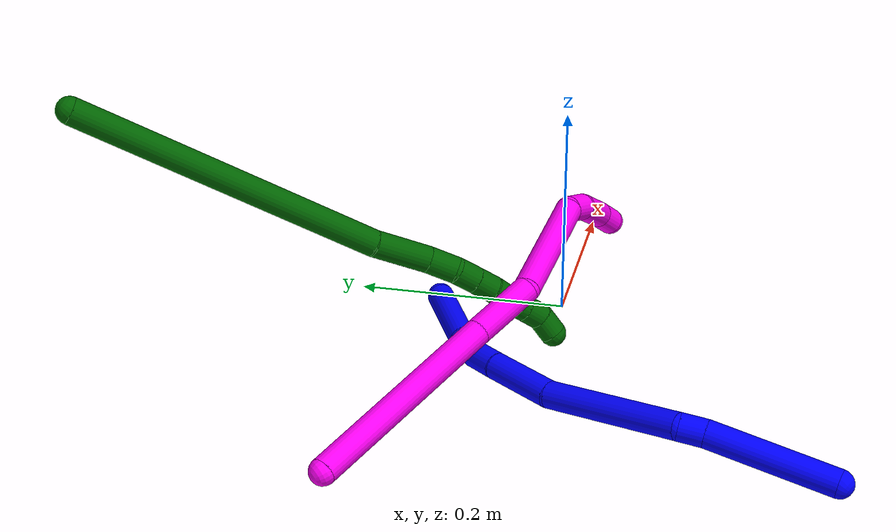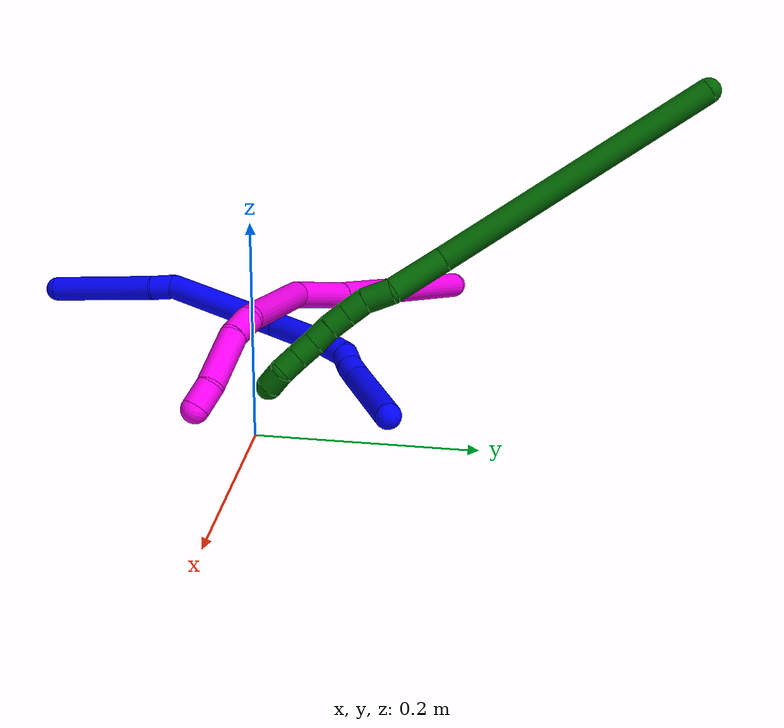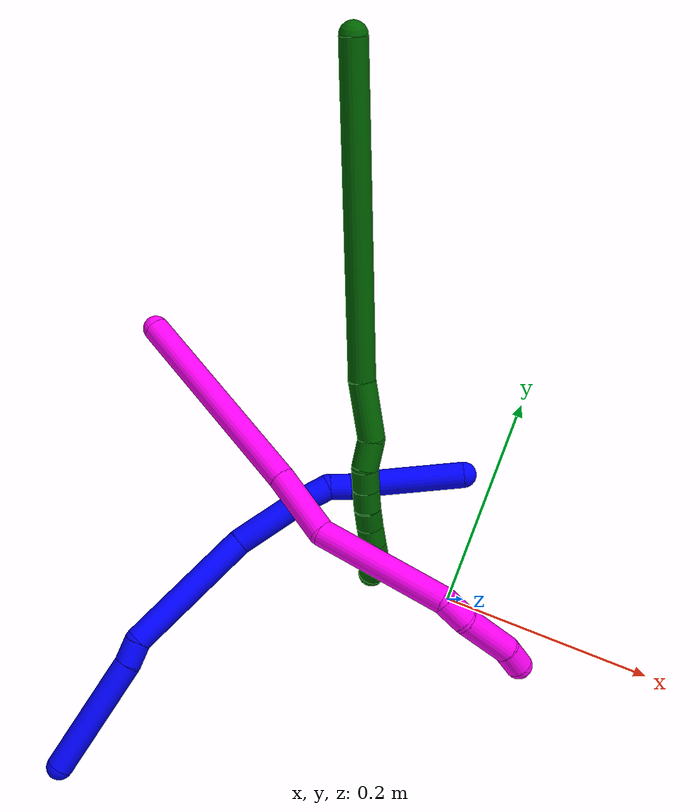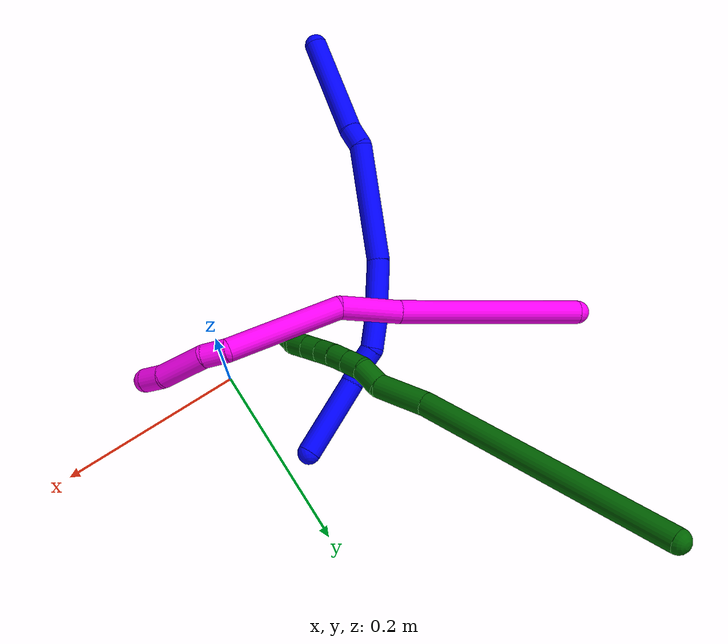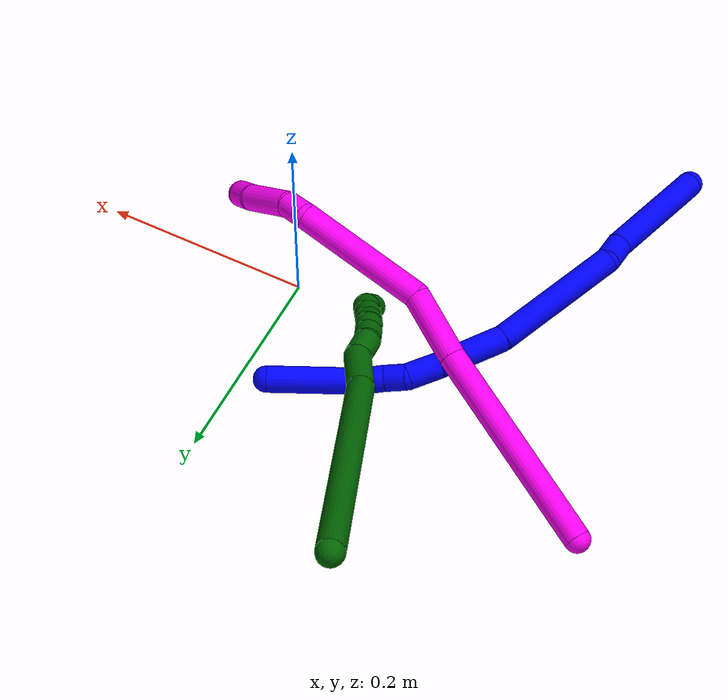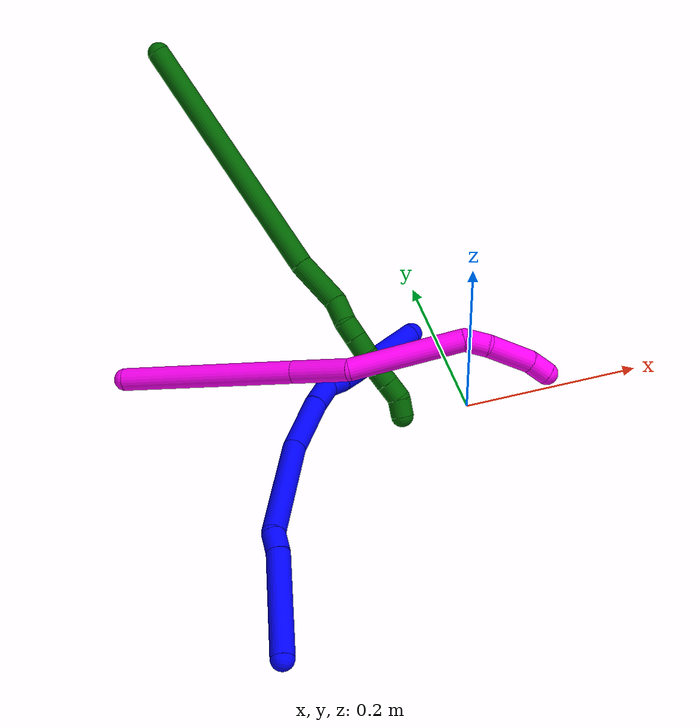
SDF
<sdf version="1.7">
 <world name="default">
  <model name="1">
   <static>0</static>
   <link name="1">
    <collision name="collision-cylinder-e_1_1_4">
     <pose>0.012238 -0.013355 -0.055549 2.90565 0.211017 1.45844</pose>
     <geometry><cylinder><radius>0.0125</radius><length>0.116855</length></cylinder></geometry>
     <surface>
      <friction><ode><mu>1.16</mu><mu2>1.16</mu2><slip1>0</slip1><slip2>0</slip2></ode></friction>
      <contact><ode><kp>1e+06</kp><kd>1</kd><max_vel>0</max_vel><min_depth>0.001</min_depth></ode></contact>
     </surface>
    </collision>
    <visual name="visual-cylinder-e_1_1_4">
     <pose>0.012238 -0.013355 -0.055549 2.90565 0.211017 1.45844</pose>
     <geometry><cylinder><radius>0.0125</radius><length>0.116855</length></cylinder></geometry>
     <material><ambient>0 0 1 1</ambient></material>
    </visual>
    <collision name="collision-cylinder-e_2_4_5">
     <pose>0.026934 -0.031324 -0.121598 2.72765 0.211114 0.934603</pose>
     <geometry><cylinder><radius>0.0125</radius><length>0.02346</length></cylinder></geometry>
     <surface>
      <friction><ode><mu>1.16</mu><mu2>1.16</mu2><slip1>0</slip1><slip2>0</slip2></ode></friction>
      <contact><ode><kp>1e+06</kp><kd>1</kd><max_vel>0</max_vel><min_depth>0.001</min_depth></ode></contact>
     </surface>
    </collision>
    <visual name="visual-cylinder-e_2_4_5">
     <pose>0.026934 -0.031324 -0.121598 2.72765 0.211114 0.934603</pose>
     <geometry><cylinder><radius>0.0125</radius><length>0.02346</length></cylinder></geometry>
     <material><ambient>0 0 1 1</ambient></material>
    </visual>
    <collision name="collision-cylinder-e_3_5_6">
     <pose>0.059278 -0.038342 -0.189851 3.09998 0.47719 2.97088</pose>
     <geometry><cylinder><radius>0.0125</radius><length>0.130142</length></cylinder></geometry>
     <surface>
      <friction><ode><mu>1.16</mu><mu2>1.16</mu2><slip1>0</slip1><slip2>0</slip2></ode></friction>
      <contact><ode><kp>1e+06</kp><kd>1</kd><max_vel>0</max_vel><min_depth>0.001</min_depth></ode></contact>
     </surface>
    </collision>
    <visual name="visual-cylinder-e_3_5_6">
     <pose>0.059278 -0.038342 -0.189851 3.09998 0.47719 2.97088</pose>
     <geometry><cylinder><radius>0.0125</radius><length>0.130142</length></cylinder></geometry>
     <material><ambient>0 0 1 1</ambient></material>
    </visual>
    <collision name="collision-cylinder-e_4_6_7">
     <pose>0.100899 -0.035458 -0.278739 -2.97333 0.355753 -2.26439</pose>
     <geometry><cylinder><radius>0.0125</radius><length>0.067384</length></cylinder></geometry>
     <surface>
      <friction><ode><mu>1.16</mu><mu2>1.16</mu2><slip1>0</slip1><slip2>0</slip2></ode></friction>
      <contact><ode><kp>1e+06</kp><kd>1</kd><max_vel>0</max_vel><min_depth>0.001</min_depth></ode></contact>
     </surface>
    </collision>
    <visual name="visual-cylinder-e_4_6_7">
     <pose>0.100899 -0.035458 -0.278739 -2.97333 0.355753 -2.26439</pose>
     <geometry><cylinder><radius>0.0125</radius><length>0.067384</length></cylinder></geometry>
     <material><ambient>0 0 1 1</ambient></material>
    </visual>
    <collision name="collision-cylinder-e_5_7_8">
     <pose>0.118834 -0.026183 -0.323952 -2.86568 0.400862 -1.9426</pose>
     <geometry><cylinder><radius>0.0125</radius><length>0.031781</length></cylinder></geometry>
     <surface>
      <friction><ode><mu>1.16</mu><mu2>1.16</mu2><slip1>0</slip1><slip2>0</slip2></ode></friction>
      <contact><ode><kp>1e+06</kp><kd>1</kd><max_vel>0</max_vel><min_depth>0.001</min_depth></ode></contact>
     </surface>
    </collision>
    <visual name="visual-cylinder-e_5_7_8">
     <pose>0.118834 -0.026183 -0.323952 -2.86568 0.400862 -1.9426</pose>
     <geometry><cylinder><radius>0.0125</radius><length>0.031781</length></cylinder></geometry>
     <material><ambient>0 0 1 1</ambient></material>
    </visual>
    <collision name="collision-cylinder-e_6_8_9">
     <pose>0.129754 -0.015557 -0.344317 -2.32888 0.476451 -1.02757</pose>
     <geometry><cylinder><radius>0.0125</radius><length>0.020582</length></cylinder></geometry>
     <surface>
      <friction><ode><mu>1.16</mu><mu2>1.16</mu2><slip1>0</slip1><slip2>0</slip2></ode></friction>
      <contact><ode><kp>1e+06</kp><kd>1</kd><max_vel>0</max_vel><min_depth>0.001</min_depth></ode></contact>
     </surface>
    </collision>
    <visual name="visual-cylinder-e_6_8_9">
     <pose>0.129754 -0.015557 -0.344317 -2.32888 0.476451 -1.02757</pose>
     <geometry><cylinder><radius>0.0125</radius><length>0.020582</length></cylinder></geometry>
     <material><ambient>0 0 1 1</ambient></material>
    </visual>
    <collision name="collision-cylinder-e_7_9_10">
     <pose>0.139019 -0.002932 -0.358589 -2.49847 0.427456 -1.15492</pose>
     <geometry><cylinder><radius>0.0125</radius><length>0.021929</length></cylinder></geometry>
     <surface>
      <friction><ode><mu>1.16</mu><mu2>1.16</mu2><slip1>0</slip1><slip2>0</slip2></ode></friction>
      <contact><ode><kp>1e+06</kp><kd>1</kd><max_vel>0</max_vel><min_depth>0.001</min_depth></ode></contact>
     </surface>
    </collision>
    <visual name="visual-cylinder-e_7_9_10">
     <pose>0.139019 -0.002932 -0.358589 -2.49847 0.427456 -1.15492</pose>
     <geometry><cylinder><radius>0.0125</radius><length>0.021929</length></cylinder></geometry>
     <material><ambient>0 0 1 1</ambient></material>
    </visual>
    <collision name="collision-cylinder-e_8_10_2">
     <pose>0.155215 0.02981 -0.399413 -2.45787 0.268383 -0.725247</pose>
     <geometry><cylinder><radius>0.0125</radius><length>0.087868</length></cylinder></geometry>
     <surface>
      <friction><ode><mu>1.16</mu><mu2>1.16</mu2><slip1>0</slip1><slip2>0</slip2></ode></friction>
      <contact><ode><kp>1e+06</kp><kd>1</kd><max_vel>0</max_vel><min_depth>0.001</min_depth></ode></contact>
     </surface>
    </collision>
    <visual name="visual-cylinder-e_8_10_2">
     <pose>0.155215 0.02981 -0.399413 -2.45787 0.268383 -0.725247</pose>
     <geometry><cylinder><radius>0.0125</radius><length>0.087868</length></cylinder></geometry>
     <material><ambient>0 0 1 1</ambient></material>
    </visual>
    <collision name="collision-sphere-2">
     <pose>0.166865 0.056569 -0.432252 0 -0 0</pose>
     <geometry><sphere><radius>0.0125</radius></sphere></geometry>
     <surface>
      <friction><ode><mu>1.16</mu><mu2>1.16</mu2><slip1>0</slip1><slip2>0</slip2></ode></friction>
      <contact><ode><kp>1e+06</kp><kd>1</kd><max_vel>0</max_vel><min_depth>0.001</min_depth></ode></contact>
     </surface>
    </collision>
    <visual name="visual-sphere-2">
     <pose>0.166865 0.056569 -0.432252 0 -0 0</pose>
     <geometry><sphere><radius>0.0125</radius></sphere></geometry>
     <material><ambient>0 0 1 1</ambient></material>
    </visual>
    <collision name="collision-sphere-10">
     <pose>0.143565 0.003051 -0.366573 0 -0 0</pose>
     <geometry><sphere><radius>0.0125</radius></sphere></geometry>
     <surface>
      <friction><ode><mu>1.16</mu><mu2>1.16</mu2><slip1>0</slip1><slip2>0</slip2></ode></friction>
      <contact><ode><kp>1e+06</kp><kd>1</kd><max_vel>0</max_vel><min_depth>0.001</min_depth></ode></contact>
     </surface>
    </collision>
    <visual name="visual-sphere-10">
     <pose>0.143565 0.003051 -0.366573 0 -0 0</pose>
     <geometry><sphere><radius>0.0125</radius></sphere></geometry>
     <material><ambient>0 0 1 1</ambient></material>
    </visual>
    <collision name="collision-sphere-9">
     <pose>0.134474 -0.008916 -0.350604 0 -0 0</pose>
     <geometry><sphere><radius>0.0125</radius></sphere></geometry>
     <surface>
      <friction><ode><mu>1.16</mu><mu2>1.16</mu2><slip1>0</slip1><slip2>0</slip2></ode></friction>
      <contact><ode><kp>1e+06</kp><kd>1</kd><max_vel>0</max_vel><min_depth>0.001</min_depth></ode></contact>
     </surface>
    </collision>
    <visual name="visual-sphere-9">
     <pose>0.134474 -0.008916 -0.350604 0 -0 0</pose>
     <geometry><sphere><radius>0.0125</radius></sphere></geometry>
     <material><ambient>0 0 1 1</ambient></material>
    </visual>
    <collision name="collision-sphere-4">
     <pose>0.024476 -0.02671 -0.111097 0 -0 0</pose>
     <geometry><sphere><radius>0.0125</radius></sphere></geometry>
     <surface>
      <friction><ode><mu>1.16</mu><mu2>1.16</mu2><slip1>0</slip1><slip2>0</slip2></ode></friction>
      <contact><ode><kp>1e+06</kp><kd>1</kd><max_vel>0</max_vel><min_depth>0.001</min_depth></ode></contact>
     </surface>
    </collision>
    <visual name="visual-sphere-4">
     <pose>0.024476 -0.02671 -0.111097 0 -0 0</pose>
     <geometry><sphere><radius>0.0125</radius></sphere></geometry>
     <material><ambient>0 0 1 1</ambient></material>
    </visual>
    <collision name="collision-sphere-1">
     <geometry><sphere><radius>0.0125</radius></sphere></geometry>
     <surface>
      <friction><ode><mu>1.16</mu><mu2>1.16</mu2><slip1>0</slip1><slip2>0</slip2></ode></friction>
      <contact><ode><kp>1e+06</kp><kd>1</kd><max_vel>0</max_vel><min_depth>0.001</min_depth></ode></contact>
     </surface>
    </collision>
    <visual name="visual-sphere-1">
     <geometry><sphere><radius>0.0125</radius></sphere></geometry>
     <material><ambient>0 0 1 1</ambient></material>
    </visual>
    <collision name="collision-sphere-8">
     <pose>0.125035 -0.022197 -0.338029 0 -0 0</pose>
     <geometry><sphere><radius>0.0125</radius></sphere></geometry>
     <surface>
      <friction><ode><mu>1.16</mu><mu2>1.16</mu2><slip1>0</slip1><slip2>0</slip2></ode></friction>
      <contact><ode><kp>1e+06</kp><kd>1</kd><max_vel>0</max_vel><min_depth>0.001</min_depth></ode></contact>
     </surface>
    </collision>
    <visual name="visual-sphere-8">
     <pose>0.125035 -0.022197 -0.338029 0 -0 0</pose>
     <geometry><sphere><radius>0.0125</radius></sphere></geometry>
     <material><ambient>0 0 1 1</ambient></material>
    </visual>
    <collision name="collision-sphere-5">
     <pose>0.029392 -0.035937 -0.132099 0 -0 0</pose>
     <geometry><sphere><radius>0.0125</radius></sphere></geometry>
     <surface>
      <friction><ode><mu>1.16</mu><mu2>1.16</mu2><slip1>0</slip1><slip2>0</slip2></ode></friction>
      <contact><ode><kp>1e+06</kp><kd>1</kd><max_vel>0</max_vel><min_depth>0.001</min_depth></ode></contact>
     </surface>
    </collision>
    <visual name="visual-sphere-5">
     <pose>0.029392 -0.035937 -0.132099 0 -0 0</pose>
     <geometry><sphere><radius>0.0125</radius></sphere></geometry>
     <material><ambient>0 0 1 1</ambient></material>
    </visual>
    <collision name="collision-sphere-6">
     <pose>0.089164 -0.040746 -0.247602 0 -0 0</pose>
     <geometry><sphere><radius>0.0125</radius></sphere></geometry>
     <surface>
      <friction><ode><mu>1.16</mu><mu2>1.16</mu2><slip1>0</slip1><slip2>0</slip2></ode></friction>
      <contact><ode><kp>1e+06</kp><kd>1</kd><max_vel>0</max_vel><min_depth>0.001</min_depth></ode></contact>
     </surface>
    </collision>
    <visual name="visual-sphere-6">
     <pose>0.089164 -0.040746 -0.247602 0 -0 0</pose>
     <geometry><sphere><radius>0.0125</radius></sphere></geometry>
     <material><ambient>0 0 1 1</ambient></material>
    </visual>
    <collision name="collision-sphere-7">
     <pose>0.112633 -0.030169 -0.309875 0 -0 0</pose>
     <geometry><sphere><radius>0.0125</radius></sphere></geometry>
     <surface>
      <friction><ode><mu>1.16</mu><mu2>1.16</mu2><slip1>0</slip1><slip2>0</slip2></ode></friction>
      <contact><ode><kp>1e+06</kp><kd>1</kd><max_vel>0</max_vel><min_depth>0.001</min_depth></ode></contact>
     </surface>
    </collision>
    <visual name="visual-sphere-7">
     <pose>0.112633 -0.030169 -0.309875 0 -0 0</pose>
     <geometry><sphere><radius>0.0125</radius></sphere></geometry>
     <material><ambient>0 0 1 1</ambient></material>
    </visual>
    <inertial>
     <pose>0.079419 -0.016544 -0.22635 0 -0 0</pose>
     <mass>0.5</mass>
     <inertia>
      <ixx>-1e-05</ixx>
      <ixy>0</ixy>
      <ixz>0</ixz>
      <iyy>0.000273</iyy>
      <iyz>0</iyz>
      <izz>-0.000183</izz>
     </inertia>
    </inertial>
   </link>
   <pose>-0.283018 -0.276353 0.011498 -3.11821 1.19737 1.13836</pose>
  </model>
  <model name="6">
   <static>0</static>
   <link name="6">
    <collision name="collision-cylinder-e_1_1_4">
     <pose>0.010562 -0.035921 -0.142376 2.89445 0.071806 0.563021</pose>
     <geometry><cylinder><radius>0.0125</radius><length>0.294434</length></cylinder></geometry>
     <surface>
      <friction><ode><mu>1.16</mu><mu2>1.16</mu2><slip1>0</slip1><slip2>0</slip2></ode></friction>
      <contact><ode><kp>1e+06</kp><kd>1</kd><max_vel>0</max_vel><min_depth>0.001</min_depth></ode></contact>
     </surface>
    </collision>
    <visual name="visual-cylinder-e_1_1_4">
     <pose>0.010562 -0.035921 -0.142376 2.89445 0.071806 0.563021</pose>
     <geometry><cylinder><radius>0.0125</radius><length>0.294434</length></cylinder></geometry>
     <material><ambient>0 0.392157 0.003922 1</ambient></material>
    </visual>
    <collision name="collision-cylinder-e_2_4_5">
     <pose>0.027023 -0.079918 -0.311004 2.84315 0.211586 1.22993</pose>
     <geometry><cylinder><radius>0.0125</radius><length>0.056184</length></cylinder></geometry>
     <surface>
      <friction><ode><mu>1.16</mu><mu2>1.16</mu2><slip1>0</slip1><slip2>0</slip2></ode></friction>
      <contact><ode><kp>1e+06</kp><kd>1</kd><max_vel>0</max_vel><min_depth>0.001</min_depth></ode></contact>
     </surface>
    </collision>
    <visual name="visual-cylinder-e_2_4_5">
     <pose>0.027023 -0.079918 -0.311004 2.84315 0.211586 1.22993</pose>
     <geometry><cylinder><radius>0.0125</radius><length>0.056184</length></cylinder></geometry>
     <material><ambient>0 0.392157 0.003922 1</ambient></material>
    </visual>
    <collision name="collision-cylinder-e_3_5_6">
     <pose>0.030951 -0.093572 -0.349827 2.72401 -0.142391 -0.64936</pose>
     <geometry><cylinder><radius>0.0125</radius><length>0.027789</length></cylinder></geometry>
     <surface>
      <friction><ode><mu>1.16</mu><mu2>1.16</mu2><slip1>0</slip1><slip2>0</slip2></ode></friction>
      <contact><ode><kp>1e+06</kp><kd>1</kd><max_vel>0</max_vel><min_depth>0.001</min_depth></ode></contact>
     </surface>
    </collision>
    <visual name="visual-cylinder-e_3_5_6">
     <pose>0.030951 -0.093572 -0.349827 2.72401 -0.142391 -0.64936</pose>
     <geometry><cylinder><radius>0.0125</radius><length>0.027789</length></cylinder></geometry>
     <material><ambient>0 0.392157 0.003922 1</ambient></material>
    </visual>
    <collision name="collision-cylinder-e_4_6_7">
     <pose>0.029911 -0.101004 -0.372711 2.96363 0.088656 0.922795</pose>
     <geometry><cylinder><radius>0.0125</radius><length>0.021037</length></cylinder></geometry>
     <surface>
      <friction><ode><mu>1.16</mu><mu2>1.16</mu2><slip1>0</slip1><slip2>0</slip2></ode></friction>
      <contact><ode><kp>1e+06</kp><kd>1</kd><max_vel>0</max_vel><min_depth>0.001</min_depth></ode></contact>
     </surface>
    </collision>
    <visual name="visual-cylinder-e_4_6_7">
     <pose>0.029911 -0.101004 -0.372711 2.96363 0.088656 0.922795</pose>
     <geometry><cylinder><radius>0.0125</radius><length>0.021037</length></cylinder></geometry>
     <material><ambient>0 0.392157 0.003922 1</ambient></material>
    </visual>
    <collision name="collision-cylinder-e_5_7_8">
     <pose>0.031835 -0.104519 -0.393065 2.97778 0.097254 1.07027</pose>
     <geometry><cylinder><radius>0.0125</radius><length>0.020454</length></cylinder></geometry>
     <surface>
      <friction><ode><mu>1.16</mu><mu2>1.16</mu2><slip1>0</slip1><slip2>0</slip2></ode></friction>
      <contact><ode><kp>1e+06</kp><kd>1</kd><max_vel>0</max_vel><min_depth>0.001</min_depth></ode></contact>
     </surface>
    </collision>
    <visual name="visual-cylinder-e_5_7_8">
     <pose>0.031835 -0.104519 -0.393065 2.97778 0.097254 1.07027</pose>
     <geometry><cylinder><radius>0.0125</radius><length>0.020454</length></cylinder></geometry>
     <material><ambient>0 0.392157 0.003922 1</ambient></material>
    </visual>
    <collision name="collision-cylinder-e_6_8_9">
     <pose>0.034117 -0.1066 -0.413019 3.09912 0.129175 2.50696</pose>
     <geometry><cylinder><radius>0.0125</radius><length>0.020009</length></cylinder></geometry>
     <surface>
      <friction><ode><mu>1.16</mu><mu2>1.16</mu2><slip1>0</slip1><slip2>0</slip2></ode></friction>
      <contact><ode><kp>1e+06</kp><kd>1</kd><max_vel>0</max_vel><min_depth>0.001</min_depth></ode></contact>
     </surface>
    </collision>
    <visual name="visual-cylinder-e_6_8_9">
     <pose>0.034117 -0.1066 -0.413019 3.09912 0.129175 2.50696</pose>
     <geometry><cylinder><radius>0.0125</radius><length>0.020009</length></cylinder></geometry>
     <material><ambient>0 0.392157 0.003922 1</ambient></material>
    </visual>
    <collision name="collision-cylinder-e_7_9_10">
     <pose>0.037154 -0.108142 -0.432716 3.0275 0.175629 1.99073</pose>
     <geometry><cylinder><radius>0.0125</radius><length>0.020007</length></cylinder></geometry>
     <surface>
      <friction><ode><mu>1.16</mu><mu2>1.16</mu2><slip1>0</slip1><slip2>0</slip2></ode></friction>
      <contact><ode><kp>1e+06</kp><kd>1</kd><max_vel>0</max_vel><min_depth>0.001</min_depth></ode></contact>
     </surface>
    </collision>
    <visual name="visual-cylinder-e_7_9_10">
     <pose>0.037154 -0.108142 -0.432716 3.0275 0.175629 1.99073</pose>
     <geometry><cylinder><radius>0.0125</radius><length>0.020007</length></cylinder></geometry>
     <material><ambient>0 0.392157 0.003922 1</ambient></material>
    </visual>
    <collision name="collision-cylinder-e_8_10_11">
     <pose>0.040694 -0.110224 -0.452337 3.04429 0.179481 2.14966</pose>
     <geometry><cylinder><radius>0.0125</radius><length>0.020086</length></cylinder></geometry>
     <surface>
      <friction><ode><mu>1.16</mu><mu2>1.16</mu2><slip1>0</slip1><slip2>0</slip2></ode></friction>
      <contact><ode><kp>1e+06</kp><kd>1</kd><max_vel>0</max_vel><min_depth>0.001</min_depth></ode></contact>
     </surface>
    </collision>
    <visual name="visual-cylinder-e_8_10_11">
     <pose>0.040694 -0.110224 -0.452337 3.04429 0.179481 2.14966</pose>
     <geometry><cylinder><radius>0.0125</radius><length>0.020086</length></cylinder></geometry>
     <material><ambient>0 0.392157 0.003922 1</ambient></material>
    </visual>
    <collision name="collision-cylinder-e_9_11_2">
     <pose>0.04027 -0.109792 -0.471824 -2.99839 -0.223598 2.0046</pose>
     <geometry><cylinder><radius>0.0125</radius><length>0.020001</length></cylinder></geometry>
     <surface>
      <friction><ode><mu>1.16</mu><mu2>1.16</mu2><slip1>0</slip1><slip2>0</slip2></ode></friction>
      <contact><ode><kp>1e+06</kp><kd>1</kd><max_vel>0</max_vel><min_depth>0.001</min_depth></ode></contact>
     </surface>
    </collision>
    <visual name="visual-cylinder-e_9_11_2">
     <pose>0.04027 -0.109792 -0.471824 -2.99839 -0.223598 2.0046</pose>
     <geometry><cylinder><radius>0.0125</radius><length>0.020001</length></cylinder></geometry>
     <material><ambient>0 0.392157 0.003922 1</ambient></material>
    </visual>
    <collision name="collision-sphere-2">
     <pose>0.038052 -0.1084 -0.481475 0 -0 0</pose>
     <geometry><sphere><radius>0.0125</radius></sphere></geometry>
     <surface>
      <friction><ode><mu>1.16</mu><mu2>1.16</mu2><slip1>0</slip1><slip2>0</slip2></ode></friction>
      <contact><ode><kp>1e+06</kp><kd>1</kd><max_vel>0</max_vel><min_depth>0.001</min_depth></ode></contact>
     </surface>
    </collision>
    <visual name="visual-sphere-2">
     <pose>0.038052 -0.1084 -0.481475 0 -0 0</pose>
     <geometry><sphere><radius>0.0125</radius></sphere></geometry>
     <material><ambient>0 0.392157 0.003922 1</ambient></material>
    </visual>
    <collision name="collision-sphere-11">
     <pose>0.042487 -0.111184 -0.462172 0 -0 0</pose>
     <geometry><sphere><radius>0.0125</radius></sphere></geometry>
     <surface>
      <friction><ode><mu>1.16</mu><mu2>1.16</mu2><slip1>0</slip1><slip2>0</slip2></ode></friction>
      <contact><ode><kp>1e+06</kp><kd>1</kd><max_vel>0</max_vel><min_depth>0.001</min_depth></ode></contact>
     </surface>
    </collision>
    <visual name="visual-sphere-11">
     <pose>0.042487 -0.111184 -0.462172 0 -0 0</pose>
     <geometry><sphere><radius>0.0125</radius></sphere></geometry>
     <material><ambient>0 0.392157 0.003922 1</ambient></material>
    </visual>
    <collision name="collision-sphere-10">
     <pose>0.038901 -0.109264 -0.442502 0 -0 0</pose>
     <geometry><sphere><radius>0.0125</radius></sphere></geometry>
     <surface>
      <friction><ode><mu>1.16</mu><mu2>1.16</mu2><slip1>0</slip1><slip2>0</slip2></ode></friction>
      <contact><ode><kp>1e+06</kp><kd>1</kd><max_vel>0</max_vel><min_depth>0.001</min_depth></ode></contact>
     </surface>
    </collision>
    <visual name="visual-sphere-10">
     <pose>0.038901 -0.109264 -0.442502 0 -0 0</pose>
     <geometry><sphere><radius>0.0125</radius></sphere></geometry>
     <material><ambient>0 0.392157 0.003922 1</ambient></material>
    </visual>
    <collision name="collision-sphere-9">
     <pose>0.035406 -0.107021 -0.422931 0 -0 0</pose>
     <geometry><sphere><radius>0.0125</radius></sphere></geometry>
     <surface>
      <friction><ode><mu>1.16</mu><mu2>1.16</mu2><slip1>0</slip1><slip2>0</slip2></ode></friction>
      <contact><ode><kp>1e+06</kp><kd>1</kd><max_vel>0</max_vel><min_depth>0.001</min_depth></ode></contact>
     </surface>
    </collision>
    <visual name="visual-sphere-9">
     <pose>0.035406 -0.107021 -0.422931 0 -0 0</pose>
     <geometry><sphere><radius>0.0125</radius></sphere></geometry>
     <material><ambient>0 0.392157 0.003922 1</ambient></material>
    </visual>
    <collision name="collision-sphere-4">
     <pose>0.021124 -0.071842 -0.284752 0 -0 0</pose>
     <geometry><sphere><radius>0.0125</radius></sphere></geometry>
     <surface>
      <friction><ode><mu>1.16</mu><mu2>1.16</mu2><slip1>0</slip1><slip2>0</slip2></ode></friction>
      <contact><ode><kp>1e+06</kp><kd>1</kd><max_vel>0</max_vel><min_depth>0.001</min_depth></ode></contact>
     </surface>
    </collision>
    <visual name="visual-sphere-4">
     <pose>0.021124 -0.071842 -0.284752 0 -0 0</pose>
     <geometry><sphere><radius>0.0125</radius></sphere></geometry>
     <material><ambient>0 0.392157 0.003922 1</ambient></material>
    </visual>
    <collision name="collision-sphere-1">
     <geometry><sphere><radius>0.0125</radius></sphere></geometry>
     <surface>
      <friction><ode><mu>1.16</mu><mu2>1.16</mu2><slip1>0</slip1><slip2>0</slip2></ode></friction>
      <contact><ode><kp>1e+06</kp><kd>1</kd><max_vel>0</max_vel><min_depth>0.001</min_depth></ode></contact>
     </surface>
    </collision>
    <visual name="visual-sphere-1">
     <geometry><sphere><radius>0.0125</radius></sphere></geometry>
     <material><ambient>0 0.392157 0.003922 1</ambient></material>
    </visual>
    <collision name="collision-sphere-8">
     <pose>0.032828 -0.106179 -0.403107 0 -0 0</pose>
     <geometry><sphere><radius>0.0125</radius></sphere></geometry>
     <surface>
      <friction><ode><mu>1.16</mu><mu2>1.16</mu2><slip1>0</slip1><slip2>0</slip2></ode></friction>
      <contact><ode><kp>1e+06</kp><kd>1</kd><max_vel>0</max_vel><min_depth>0.001</min_depth></ode></contact>
     </surface>
    </collision>
    <visual name="visual-sphere-8">
     <pose>0.032828 -0.106179 -0.403107 0 -0 0</pose>
     <geometry><sphere><radius>0.0125</radius></sphere></geometry>
     <material><ambient>0 0.392157 0.003922 1</ambient></material>
    </visual>
    <collision name="collision-sphere-5">
     <pose>0.032923 -0.087994 -0.337255 0 -0 0</pose>
     <geometry><sphere><radius>0.0125</radius></sphere></geometry>
     <surface>
      <friction><ode><mu>1.16</mu><mu2>1.16</mu2><slip1>0</slip1><slip2>0</slip2></ode></friction>
      <contact><ode><kp>1e+06</kp><kd>1</kd><max_vel>0</max_vel><min_depth>0.001</min_depth></ode></contact>
     </surface>
    </collision>
    <visual name="visual-sphere-5">
     <pose>0.032923 -0.087994 -0.337255 0 -0 0</pose>
     <geometry><sphere><radius>0.0125</radius></sphere></geometry>
     <material><ambient>0 0.392157 0.003922 1</ambient></material>
    </visual>
    <collision name="collision-sphere-6">
     <pose>0.02898 -0.099149 -0.362399 0 -0 0</pose>
     <geometry><sphere><radius>0.0125</radius></sphere></geometry>
     <surface>
      <friction><ode><mu>1.16</mu><mu2>1.16</mu2><slip1>0</slip1><slip2>0</slip2></ode></friction>
      <contact><ode><kp>1e+06</kp><kd>1</kd><max_vel>0</max_vel><min_depth>0.001</min_depth></ode></contact>
     </surface>
    </collision>
    <visual name="visual-sphere-6">
     <pose>0.02898 -0.099149 -0.362399 0 -0 0</pose>
     <geometry><sphere><radius>0.0125</radius></sphere></geometry>
     <material><ambient>0 0.392157 0.003922 1</ambient></material>
    </visual>
    <collision name="collision-sphere-7">
     <pose>0.030842 -0.102859 -0.383022 0 -0 0</pose>
     <geometry><sphere><radius>0.0125</radius></sphere></geometry>
     <surface>
      <friction><ode><mu>1.16</mu><mu2>1.16</mu2><slip1>0</slip1><slip2>0</slip2></ode></friction>
      <contact><ode><kp>1e+06</kp><kd>1</kd><max_vel>0</max_vel><min_depth>0.001</min_depth></ode></contact>
     </surface>
    </collision>
    <visual name="visual-sphere-7">
     <pose>0.030842 -0.102859 -0.383022 0 -0 0</pose>
     <geometry><sphere><radius>0.0125</radius></sphere></geometry>
     <material><ambient>0 0.392157 0.003922 1</ambient></material>
    </visual>
    <inertial>
     <pose>0.019635 -0.061272 -0.240879 0 -0 0</pose>
     <mass>0.5</mass>
     <inertia>
      <ixx>0.002973</ixx>
      <ixy>0</ixy>
      <ixz>0</ixz>
      <iyy>-0.000587</iyy>
      <iyz>0</iyz>
      <izz>0.000334</izz>
     </inertia>
    </inertial>
   </link>
   <pose>-0.245034 0.385949 0.266434 -0.793806 -0.103811 0.253663</pose>
  </model>
  <model name="10">
   <static>0</static>
   <link name="10">
    <collision name="collision-cylinder-e_1_1_4">
     <pose>0.019126 -0.024654 -0.096358 2.89111 0.189979 1.29562</pose>
     <geometry><cylinder><radius>0.0125</radius><length>0.202567</length></cylinder></geometry>
     <surface>
      <friction><ode><mu>1.16</mu><mu2>1.16</mu2><slip1>0</slip1><slip2>0</slip2></ode></friction>
      <contact><ode><kp>1e+06</kp><kd>1</kd><max_vel>0</max_vel><min_depth>0.001</min_depth></ode></contact>
     </surface>
    </collision>
    <visual name="visual-cylinder-e_1_1_4">
     <pose>0.019126 -0.024654 -0.096358 2.89111 0.189979 1.29562</pose>
     <geometry><cylinder><radius>0.0125</radius><length>0.202567</length></cylinder></geometry>
     <material><ambient>1 0 0.964706 1</ambient></material>
    </visual>
    <collision name="collision-cylinder-e_2_4_5">
     <pose>0.042391 -0.056189 -0.224797 2.93031 0.125457 1.06954</pose>
     <geometry><cylinder><radius>0.0125</radius><length>0.066142</length></cylinder></geometry>
     <surface>
      <friction><ode><mu>1.16</mu><mu2>1.16</mu2><slip1>0</slip1><slip2>0</slip2></ode></friction>
      <contact><ode><kp>1e+06</kp><kd>1</kd><max_vel>0</max_vel><min_depth>0.001</min_depth></ode></contact>
     </surface>
    </collision>
    <visual name="visual-cylinder-e_2_4_5">
     <pose>0.042391 -0.056189 -0.224797 2.93031 0.125457 1.06954</pose>
     <geometry><cylinder><radius>0.0125</radius><length>0.066142</length></cylinder></geometry>
     <material><ambient>1 0 0.964706 1</ambient></material>
    </visual>
    <collision name="collision-cylinder-e_3_5_6">
     <pose>0.067007 -0.09645 -0.306821 2.55241 0.328553 1.00005</pose>
     <geometry><cylinder><radius>0.0125</radius><length>0.126931</length></cylinder></geometry>
     <surface>
      <friction><ode><mu>1.16</mu><mu2>1.16</mu2><slip1>0</slip1><slip2>0</slip2></ode></friction>
      <contact><ode><kp>1e+06</kp><kd>1</kd><max_vel>0</max_vel><min_depth>0.001</min_depth></ode></contact>
     </surface>
    </collision>
    <visual name="visual-cylinder-e_3_5_6">
     <pose>0.067007 -0.09645 -0.306821 2.55241 0.328553 1.00005</pose>
     <geometry><cylinder><radius>0.0125</radius><length>0.126931</length></cylinder></geometry>
     <material><ambient>1 0 0.964706 1</ambient></material>
    </visual>
    <collision name="collision-cylinder-e_4_6_7">
     <pose>0.096189 -0.131688 -0.366472 2.95261 0.721913 2.64965</pose>
     <geometry><cylinder><radius>0.0125</radius><length>0.02634</length></cylinder></geometry>
     <surface>
      <friction><ode><mu>1.16</mu><mu2>1.16</mu2><slip1>0</slip1><slip2>0</slip2></ode></friction>
      <contact><ode><kp>1e+06</kp><kd>1</kd><max_vel>0</max_vel><min_depth>0.001</min_depth></ode></contact>
     </surface>
    </collision>
    <visual name="visual-cylinder-e_4_6_7">
     <pose>0.096189 -0.131688 -0.366472 2.95261 0.721913 2.64965</pose>
     <geometry><cylinder><radius>0.0125</radius><length>0.02634</length></cylinder></geometry>
     <material><ambient>1 0 0.964706 1</ambient></material>
    </visual>
    <collision name="collision-cylinder-e_5_7_8">
     <pose>0.127781 -0.136829 -0.389879 2.90627 1.01908 2.72463</pose>
     <geometry><cylinder><radius>0.0125</radius><length>0.053753</length></cylinder></geometry>
     <surface>
      <friction><ode><mu>1.16</mu><mu2>1.16</mu2><slip1>0</slip1><slip2>0</slip2></ode></friction>
      <contact><ode><kp>1e+06</kp><kd>1</kd><max_vel>0</max_vel><min_depth>0.001</min_depth></ode></contact>
     </surface>
    </collision>
    <visual name="visual-cylinder-e_5_7_8">
     <pose>0.127781 -0.136829 -0.389879 2.90627 1.01908 2.72463</pose>
     <geometry><cylinder><radius>0.0125</radius><length>0.053753</length></cylinder></geometry>
     <material><ambient>1 0 0.964706 1</ambient></material>
    </visual>
    <collision name="collision-cylinder-e_6_8_2">
     <pose>0.160883 -0.138555 -0.409939 -2.90133 1.00065 -2.70698</pose>
     <geometry><cylinder><radius>0.0125</radius><length>0.024266</length></cylinder></geometry>
     <surface>
      <friction><ode><mu>1.16</mu><mu2>1.16</mu2><slip1>0</slip1><slip2>0</slip2></ode></friction>
      <contact><ode><kp>1e+06</kp><kd>1</kd><max_vel>0</max_vel><min_depth>0.001</min_depth></ode></contact>
     </surface>
    </collision>
    <visual name="visual-cylinder-e_6_8_2">
     <pose>0.160883 -0.138555 -0.409939 -2.90133 1.00065 -2.70698</pose>
     <geometry><cylinder><radius>0.0125</radius><length>0.024266</length></cylinder></geometry>
     <material><ambient>1 0 0.964706 1</ambient></material>
    </visual>
    <collision name="collision-sphere-2">
     <pose>0.171097 -0.136997 -0.4163 0 -0 0</pose>
     <geometry><sphere><radius>0.0125</radius></sphere></geometry>
     <surface>
      <friction><ode><mu>1.16</mu><mu2>1.16</mu2><slip1>0</slip1><slip2>0</slip2></ode></friction>
      <contact><ode><kp>1e+06</kp><kd>1</kd><max_vel>0</max_vel><min_depth>0.001</min_depth></ode></contact>
     </surface>
    </collision>
    <visual name="visual-sphere-2">
     <pose>0.171097 -0.136997 -0.4163 0 -0 0</pose>
     <geometry><sphere><radius>0.0125</radius></sphere></geometry>
     <material><ambient>1 0 0.964706 1</ambient></material>
    </visual>
    <collision name="collision-sphere-4">
     <pose>0.038252 -0.049308 -0.192715 0 -0 0</pose>
     <geometry><sphere><radius>0.0125</radius></sphere></geometry>
     <surface>
      <friction><ode><mu>1.16</mu><mu2>1.16</mu2><slip1>0</slip1><slip2>0</slip2></ode></friction>
      <contact><ode><kp>1e+06</kp><kd>1</kd><max_vel>0</max_vel><min_depth>0.001</min_depth></ode></contact>
     </surface>
    </collision>
    <visual name="visual-sphere-4">
     <pose>0.038252 -0.049308 -0.192715 0 -0 0</pose>
     <geometry><sphere><radius>0.0125</radius></sphere></geometry>
     <material><ambient>1 0 0.964706 1</ambient></material>
    </visual>
    <collision name="collision-sphere-1">
     <geometry><sphere><radius>0.0125</radius></sphere></geometry>
     <surface>
      <friction><ode><mu>1.16</mu><mu2>1.16</mu2><slip1>0</slip1><slip2>0</slip2></ode></friction>
      <contact><ode><kp>1e+06</kp><kd>1</kd><max_vel>0</max_vel><min_depth>0.001</min_depth></ode></contact>
     </surface>
    </collision>
    <visual name="visual-sphere-1">
     <geometry><sphere><radius>0.0125</radius></sphere></geometry>
     <material><ambient>1 0 0.964706 1</ambient></material>
    </visual>
    <collision name="collision-sphere-8">
     <pose>0.150669 -0.140113 -0.403579 0 -0 0</pose>
     <geometry><sphere><radius>0.0125</radius></sphere></geometry>
     <surface>
      <friction><ode><mu>1.16</mu><mu2>1.16</mu2><slip1>0</slip1><slip2>0</slip2></ode></friction>
      <contact><ode><kp>1e+06</kp><kd>1</kd><max_vel>0</max_vel><min_depth>0.001</min_depth></ode></contact>
     </surface>
    </collision>
    <visual name="visual-sphere-8">
     <pose>0.150669 -0.140113 -0.403579 0 -0 0</pose>
     <geometry><sphere><radius>0.0125</radius></sphere></geometry>
     <material><ambient>1 0 0.964706 1</ambient></material>
    </visual>
    <collision name="collision-sphere-5">
     <pose>0.046529 -0.06307 -0.256878 0 -0 0</pose>
     <geometry><sphere><radius>0.0125</radius></sphere></geometry>
     <surface>
      <friction><ode><mu>1.16</mu><mu2>1.16</mu2><slip1>0</slip1><slip2>0</slip2></ode></friction>
      <contact><ode><kp>1e+06</kp><kd>1</kd><max_vel>0</max_vel><min_depth>0.001</min_depth></ode></contact>
     </surface>
    </collision>
    <visual name="visual-sphere-5">
     <pose>0.046529 -0.06307 -0.256878 0 -0 0</pose>
     <geometry><sphere><radius>0.0125</radius></sphere></geometry>
     <material><ambient>1 0 0.964706 1</ambient></material>
    </visual>
    <collision name="collision-sphere-6">
     <pose>0.087486 -0.129831 -0.356763 0 -0 0</pose>
     <geometry><sphere><radius>0.0125</radius></sphere></geometry>
     <surface>
      <friction><ode><mu>1.16</mu><mu2>1.16</mu2><slip1>0</slip1><slip2>0</slip2></ode></friction>
      <contact><ode><kp>1e+06</kp><kd>1</kd><max_vel>0</max_vel><min_depth>0.001</min_depth></ode></contact>
     </surface>
    </collision>
    <visual name="visual-sphere-6">
     <pose>0.087486 -0.129831 -0.356763 0 -0 0</pose>
     <geometry><sphere><radius>0.0125</radius></sphere></geometry>
     <material><ambient>1 0 0.964706 1</ambient></material>
    </visual>
    <collision name="collision-sphere-7">
     <pose>0.104892 -0.133544 -0.37618 0 -0 0</pose>
     <geometry><sphere><radius>0.0125</radius></sphere></geometry>
     <surface>
      <friction><ode><mu>1.16</mu><mu2>1.16</mu2><slip1>0</slip1><slip2>0</slip2></ode></friction>
      <contact><ode><kp>1e+06</kp><kd>1</kd><max_vel>0</max_vel><min_depth>0.001</min_depth></ode></contact>
     </surface>
    </collision>
    <visual name="visual-sphere-7">
     <pose>0.104892 -0.133544 -0.37618 0 -0 0</pose>
     <geometry><sphere><radius>0.0125</radius></sphere></geometry>
     <material><ambient>1 0 0.964706 1</ambient></material>
    </visual>
    <inertial>
     <pose>0.056979 -0.070278 -0.227781 0 -0 0</pose>
     <mass>0.5</mass>
     <inertia><ixx>0.001121</ixx><ixy>0</ixy><ixz>0</ixz><iyy>0.00062</iyy><iyz>0</iyz><izz>2.9e-05</izz></inertia>
    </inertial>
   </link>
   <pose>-0.356977 0.140448 0.012064 -2.24281 1.01472 0.158371</pose>
  </model>
 </world>
</sdf>
